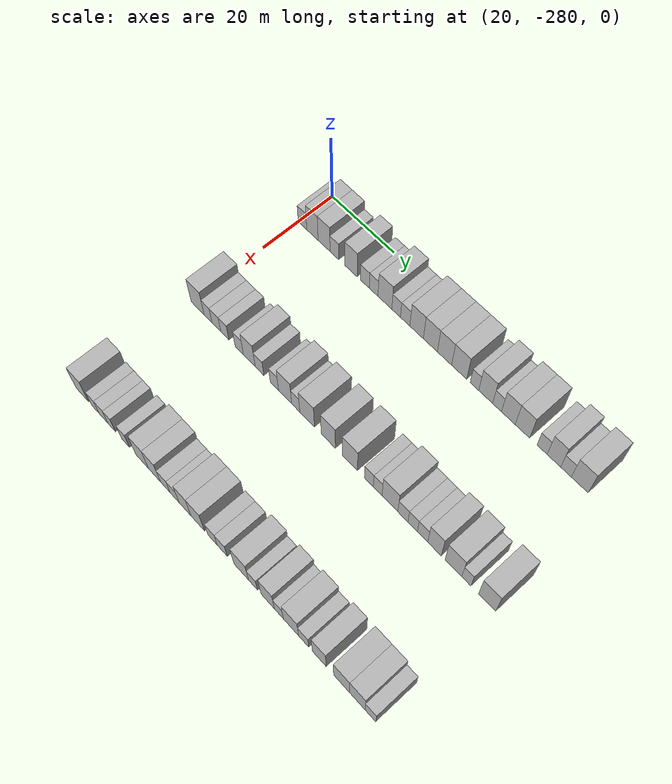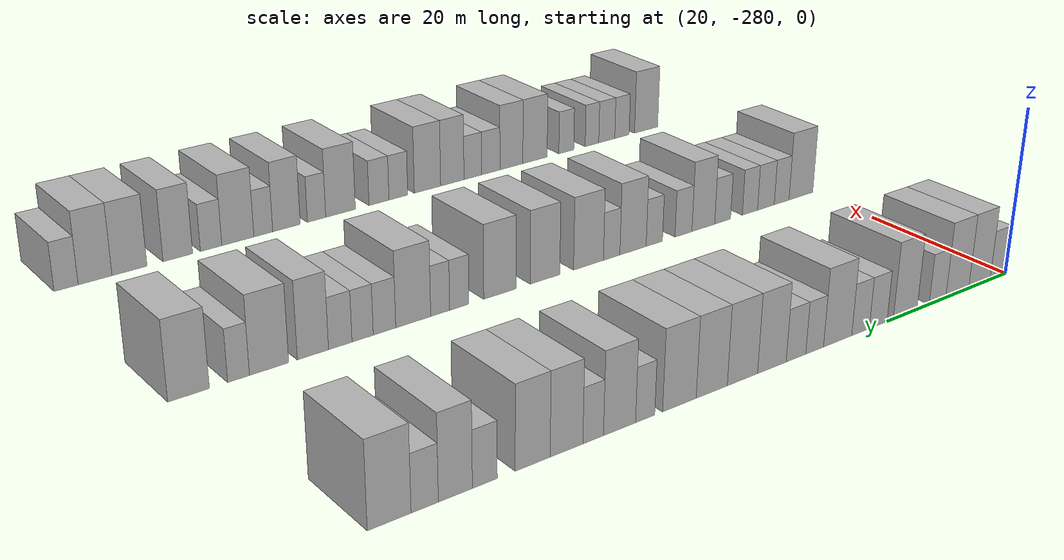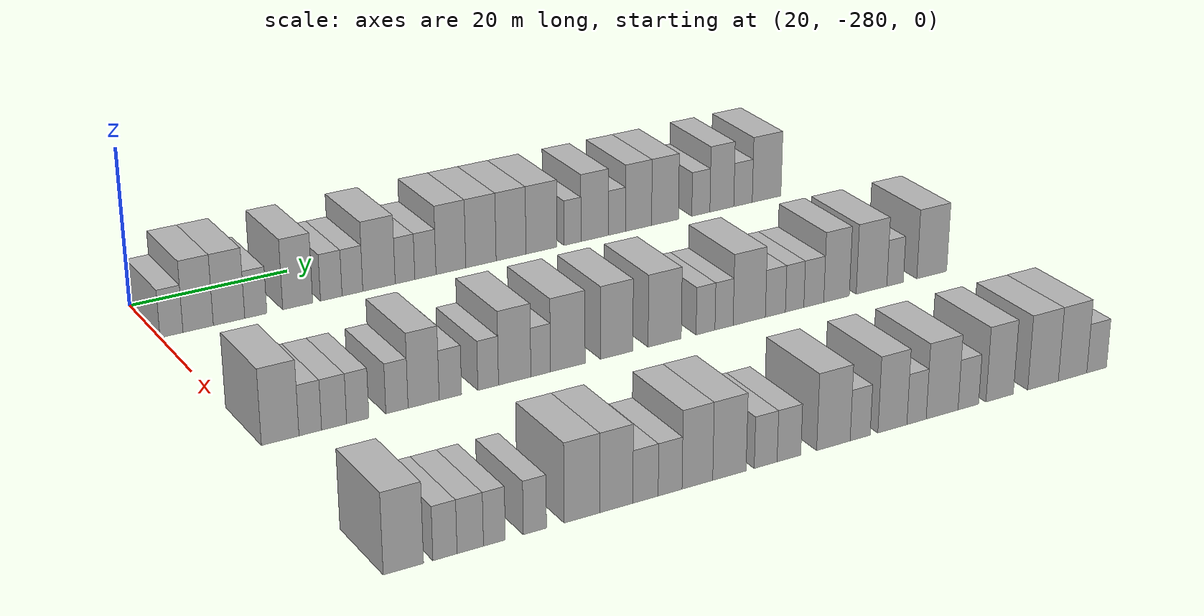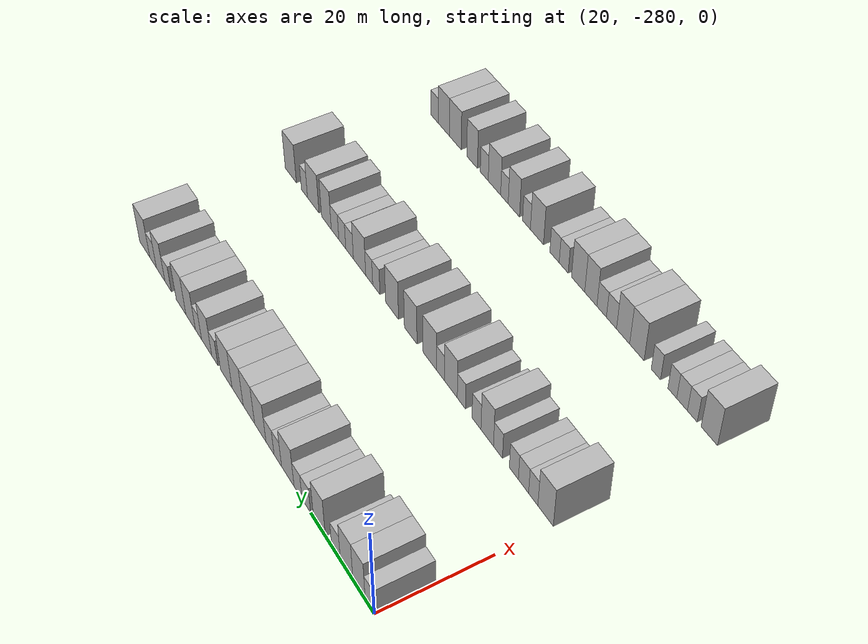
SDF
<sdf version="1.6">
 <world name="default">
  <model name="building_1">
   <static>1</static>
   <pose>25.0000 -278.6009 0 0.000000 0.000000 0.000000</pose>
   <link name="link">
    <pose>0 0 3.00 0 0 0</pose>
    <collision name="collision"><geometry><box><size>10.0000 2.7981 6.0000</size></box></geometry></collision>
    <visual name="visual">
     <cast_shadows>0</cast_shadows>
     <geometry><box><size>10.0000 2.7981 6.0000</size></box></geometry>
     <material>
      <script>
       <uri>model://HANNAS_wall/materials/scripts</uri>
       <uri>model://HANNAS_wall/materials/textures</uri>
       <name>vrc/HANNAS_wall</name>
      </script>
     </material>
    </visual>
   </link>
  </model>
  <model name="building_2">
   <static>1</static>
   <pose>25.0000 -275.3410 0 0.000000 0.000000 0.000000</pose>
   <link name="link">
    <pose>0 0 4.50 0 0 0</pose>
    <collision name="collision"><geometry><box><size>10.0000 3.7218 9.0000</size></box></geometry></collision>
    <visual name="visual">
     <cast_shadows>0</cast_shadows>
     <geometry><box><size>10.0000 3.7218 9.0000</size></box></geometry>
     <material>
      <script>
       <uri>model://HANNAS_wall/materials/scripts</uri>
       <uri>model://HANNAS_wall/materials/textures</uri>
       <name>vrc/HANNAS_wall</name>
      </script>
     </material>
    </visual>
   </link>
  </model>
  <model name="building_3">
   <static>1</static>
   <pose>25.0000 -271.5266 0 0.000000 0.000000 0.000000</pose>
   <link name="link">
    <pose>0 0 4.50 0 0 0</pose>
    <collision name="collision"><geometry><box><size>10.0000 3.9069 9.0000</size></box></geometry></collision>
    <visual name="visual">
     <cast_shadows>0</cast_shadows>
     <geometry><box><size>10.0000 3.9069 9.0000</size></box></geometry>
     <material>
      <script>
       <uri>model://HANNAS_wall/materials/scripts</uri>
       <uri>model://HANNAS_wall/materials/textures</uri>
       <name>vrc/HANNAS_wall</name>
      </script>
     </material>
    </visual>
   </link>
  </model>
  <model name="building_4">
   <static>1</static>
   <pose>25.0000 -268.1847 0 0.000000 0.000000 0.000000</pose>
   <link name="link">
    <pose>0 0 3.00 0 0 0</pose>
    <collision name="collision"><geometry><box><size>10.0000 2.7768 6.0000</size></box></geometry></collision>
    <visual name="visual">
     <cast_shadows>0</cast_shadows>
     <geometry><box><size>10.0000 2.7768 6.0000</size></box></geometry>
     <material>
      <script>
       <uri>model://HANNAS_wall/materials/scripts</uri>
       <uri>model://HANNAS_wall/materials/textures</uri>
       <name>vrc/HANNAS_wall</name>
      </script>
     </material>
    </visual>
   </link>
  </model>
  <model name="building_5">
   <static>1</static>
   <pose>25.0000 -262.8816 0 0.000000 0.000000 0.000000</pose>
   <link name="link">
    <pose>0 0 4.50 0 0 0</pose>
    <collision name="collision"><geometry><box><size>10.0000 3.8293 9.0000</size></box></geometry></collision>
    <visual name="visual">
     <cast_shadows>0</cast_shadows>
     <geometry><box><size>10.0000 3.8293 9.0000</size></box></geometry>
     <material>
      <script>
       <uri>model://HANNAS_wall/materials/scripts</uri>
       <uri>model://HANNAS_wall/materials/textures</uri>
       <name>vrc/HANNAS_wall</name>
      </script>
     </material>
    </visual>
   </link>
  </model>
  <model name="building_6">
   <static>1</static>
   <pose>25.0000 -258.5725 0 0.000000 0.000000 0.000000</pose>
   <link name="link">
    <pose>0 0 3.00 0 0 0</pose>
    <collision name="collision"><geometry><box><size>10.0000 2.7889 6.0000</size></box></geometry></collision>
    <visual name="visual">
     <cast_shadows>0</cast_shadows>
     <geometry><box><size>10.0000 2.7889 6.0000</size></box></geometry>
     <material>
      <script>
       <uri>model://HANNAS_wall/materials/scripts</uri>
       <uri>model://HANNAS_wall/materials/textures</uri>
       <name>vrc/HANNAS_wall</name>
      </script>
     </material>
    </visual>
   </link>
  </model>
  <model name="building_7">
   <static>1</static>
   <pose>25.0000 -255.8251 0 0.000000 0.000000 0.000000</pose>
   <link name="link">
    <pose>0 0 3.00 0 0 0</pose>
    <collision name="collision"><geometry><box><size>10.0000 2.7058 6.0000</size></box></geometry></collision>
    <visual name="visual">
     <cast_shadows>0</cast_shadows>
     <geometry><box><size>10.0000 2.7058 6.0000</size></box></geometry>
     <material>
      <script>
       <uri>model://HANNAS_wall/materials/scripts</uri>
       <uri>model://HANNAS_wall/materials/textures</uri>
       <name>vrc/HANNAS_wall</name>
      </script>
     </material>
    </visual>
   </link>
  </model>
  <model name="building_8">
   <static>1</static>
   <pose>25.0000 -252.3370 0 0.000000 0.000000 0.000000</pose>
   <link name="link">
    <pose>0 0 4.50 0 0 0</pose>
    <collision name="collision"><geometry><box><size>10.0000 4.2704 9.0000</size></box></geometry></collision>
    <visual name="visual">
     <cast_shadows>0</cast_shadows>
     <geometry><box><size>10.0000 4.2704 9.0000</size></box></geometry>
     <material>
      <script>
       <uri>model://HANNAS_wall/materials/scripts</uri>
       <uri>model://HANNAS_wall/materials/textures</uri>
       <name>vrc/HANNAS_wall</name>
      </script>
     </material>
    </visual>
   </link>
  </model>
  <model name="building_9">
   <static>1</static>
   <pose>25.0000 -248.8935 0 0.000000 0.000000 0.000000</pose>
   <link name="link">
    <pose>0 0 3.00 0 0 0</pose>
    <collision name="collision"><geometry><box><size>10.0000 2.6167 6.0000</size></box></geometry></collision>
    <visual name="visual">
     <cast_shadows>0</cast_shadows>
     <geometry><box><size>10.0000 2.6167 6.0000</size></box></geometry>
     <material>
      <script>
       <uri>model://HANNAS_wall/materials/scripts</uri>
       <uri>model://HANNAS_wall/materials/textures</uri>
       <name>vrc/HANNAS_wall</name>
      </script>
     </material>
    </visual>
   </link>
  </model>
  <model name="building_10">
   <static>1</static>
   <pose>25.0000 -246.1637 0 0.000000 0.000000 0.000000</pose>
   <link name="link">
    <pose>0 0 3.00 0 0 0</pose>
    <collision name="collision"><geometry><box><size>10.0000 2.8430 6.0000</size></box></geometry></collision>
    <visual name="visual">
     <cast_shadows>0</cast_shadows>
     <geometry><box><size>10.0000 2.8430 6.0000</size></box></geometry>
     <material>
      <script>
       <uri>model://HANNAS_wall/materials/scripts</uri>
       <uri>model://HANNAS_wall/materials/textures</uri>
       <name>vrc/HANNAS_wall</name>
      </script>
     </material>
    </visual>
   </link>
  </model>
  <model name="building_11">
   <static>1</static>
   <pose>25.0000 -242.7154 0 0.000000 0.000000 0.000000</pose>
   <link name="link">
    <pose>0 0 4.50 0 0 0</pose>
    <collision name="collision"><geometry><box><size>10.0000 4.0534 9.0000</size></box></geometry></collision>
    <visual name="visual">
     <cast_shadows>0</cast_shadows>
     <geometry><box><size>10.0000 4.0534 9.0000</size></box></geometry>
     <material>
      <script>
       <uri>model://HANNAS_wall/materials/scripts</uri>
       <uri>model://HANNAS_wall/materials/textures</uri>
       <name>vrc/HANNAS_wall</name>
      </script>
     </material>
    </visual>
   </link>
  </model>
  <model name="building_12">
   <static>1</static>
   <pose>25.0000 -238.6042 0 0.000000 0.000000 0.000000</pose>
   <link name="link">
    <pose>0 0 4.50 0 0 0</pose>
    <collision name="collision"><geometry><box><size>10.0000 4.1691 9.0000</size></box></geometry></collision>
    <visual name="visual">
     <cast_shadows>0</cast_shadows>
     <geometry><box><size>10.0000 4.1691 9.0000</size></box></geometry>
     <material>
      <script>
       <uri>model://HANNAS_wall/materials/scripts</uri>
       <uri>model://HANNAS_wall/materials/textures</uri>
       <name>vrc/HANNAS_wall</name>
      </script>
     </material>
    </visual>
   </link>
  </model>
  <model name="building_13">
   <static>1</static>
   <pose>25.0000 -234.4380 0 0.000000 0.000000 0.000000</pose>
   <link name="link">
    <pose>0 0 4.50 0 0 0</pose>
    <collision name="collision"><geometry><box><size>10.0000 4.1633 9.0000</size></box></geometry></collision>
    <visual name="visual">
     <cast_shadows>0</cast_shadows>
     <geometry><box><size>10.0000 4.1633 9.0000</size></box></geometry>
     <material>
      <script>
       <uri>model://HANNAS_wall/materials/scripts</uri>
       <uri>model://HANNAS_wall/materials/textures</uri>
       <name>vrc/HANNAS_wall</name>
      </script>
     </material>
    </visual>
   </link>
  </model>
  <model name="building_14">
   <static>1</static>
   <pose>25.0000 -230.1711 0 0.000000 0.000000 0.000000</pose>
   <link name="link">
    <pose>0 0 4.50 0 0 0</pose>
    <collision name="collision"><geometry><box><size>10.0000 4.3705 9.0000</size></box></geometry></collision>
    <visual name="visual">
     <cast_shadows>0</cast_shadows>
     <geometry><box><size>10.0000 4.3705 9.0000</size></box></geometry>
     <material>
      <script>
       <uri>model://HANNAS_wall/materials/scripts</uri>
       <uri>model://HANNAS_wall/materials/textures</uri>
       <name>vrc/HANNAS_wall</name>
      </script>
     </material>
    </visual>
   </link>
  </model>
  <model name="building_15">
   <static>1</static>
   <pose>25.0000 -225.7788 0 0.000000 0.000000 0.000000</pose>
   <link name="link">
    <pose>0 0 3.00 0 0 0</pose>
    <collision name="collision"><geometry><box><size>10.0000 2.4141 6.0000</size></box></geometry></collision>
    <visual name="visual">
     <cast_shadows>0</cast_shadows>
     <geometry><box><size>10.0000 2.4141 6.0000</size></box></geometry>
     <material>
      <script>
       <uri>model://HANNAS_wall/materials/scripts</uri>
       <uri>model://HANNAS_wall/materials/textures</uri>
       <name>vrc/HANNAS_wall</name>
      </script>
     </material>
    </visual>
   </link>
  </model>
  <model name="building_16">
   <static>1</static>
   <pose>25.0000 -222.5971 0 0.000000 0.000000 0.000000</pose>
   <link name="link">
    <pose>0 0 4.50 0 0 0</pose>
    <collision name="collision"><geometry><box><size>10.0000 3.9493 9.0000</size></box></geometry></collision>
    <visual name="visual">
     <cast_shadows>0</cast_shadows>
     <geometry><box><size>10.0000 3.9493 9.0000</size></box></geometry>
     <material>
      <script>
       <uri>model://HANNAS_wall/materials/scripts</uri>
       <uri>model://HANNAS_wall/materials/textures</uri>
       <name>vrc/HANNAS_wall</name>
      </script>
     </material>
    </visual>
   </link>
  </model>
  <model name="building_17">
   <static>1</static>
   <pose>25.0000 -219.3799 0 0.000000 0.000000 0.000000</pose>
   <link name="link">
    <pose>0 0 3.00 0 0 0</pose>
    <collision name="collision"><geometry><box><size>10.0000 2.4851 6.0000</size></box></geometry></collision>
    <visual name="visual">
     <cast_shadows>0</cast_shadows>
     <geometry><box><size>10.0000 2.4851 6.0000</size></box></geometry>
     <material>
      <script>
       <uri>model://HANNAS_wall/materials/scripts</uri>
       <uri>model://HANNAS_wall/materials/textures</uri>
       <name>vrc/HANNAS_wall</name>
      </script>
     </material>
    </visual>
   </link>
  </model>
  <model name="building_18">
   <static>1</static>
   <pose>25.0000 -216.2177 0 0.000000 0.000000 0.000000</pose>
   <link name="link">
    <pose>0 0 4.50 0 0 0</pose>
    <collision name="collision"><geometry><box><size>10.0000 3.8392 9.0000</size></box></geometry></collision>
    <visual name="visual">
     <cast_shadows>0</cast_shadows>
     <geometry><box><size>10.0000 3.8392 9.0000</size></box></geometry>
     <material>
      <script>
       <uri>model://HANNAS_wall/materials/scripts</uri>
       <uri>model://HANNAS_wall/materials/textures</uri>
       <name>vrc/HANNAS_wall</name>
      </script>
     </material>
    </visual>
   </link>
  </model>
  <model name="building_19">
   <static>1</static>
   <pose>25.0000 -212.3028 0 0.000000 0.000000 0.000000</pose>
   <link name="link">
    <pose>0 0 4.50 0 0 0</pose>
    <collision name="collision"><geometry><box><size>10.0000 3.9905 9.0000</size></box></geometry></collision>
    <visual name="visual">
     <cast_shadows>0</cast_shadows>
     <geometry><box><size>10.0000 3.9905 9.0000</size></box></geometry>
     <material>
      <script>
       <uri>model://HANNAS_wall/materials/scripts</uri>
       <uri>model://HANNAS_wall/materials/textures</uri>
       <name>vrc/HANNAS_wall</name>
      </script>
     </material>
    </visual>
   </link>
  </model>
  <model name="building_20">
   <static>1</static>
   <pose>25.0000 -206.9433 0 0.000000 0.000000 0.000000</pose>
   <link name="link">
    <pose>0 0 3.00 0 0 0</pose>
    <collision name="collision"><geometry><box><size>10.0000 2.7284 6.0000</size></box></geometry></collision>
    <visual name="visual">
     <cast_shadows>0</cast_shadows>
     <geometry><box><size>10.0000 2.7284 6.0000</size></box></geometry>
     <material>
      <script>
       <uri>model://HANNAS_wall/materials/scripts</uri>
       <uri>model://HANNAS_wall/materials/textures</uri>
       <name>vrc/HANNAS_wall</name>
      </script>
     </material>
    </visual>
   </link>
  </model>
  <model name="building_21">
   <static>1</static>
   <pose>25.0000 -203.7636 0 0.000000 0.000000 0.000000</pose>
   <link name="link">
    <pose>0 0 4.50 0 0 0</pose>
    <collision name="collision"><geometry><box><size>10.0000 3.6311 9.0000</size></box></geometry></collision>
    <visual name="visual">
     <cast_shadows>0</cast_shadows>
     <geometry><box><size>10.0000 3.6311 9.0000</size></box></geometry>
     <material>
      <script>
       <uri>model://HANNAS_wall/materials/scripts</uri>
       <uri>model://HANNAS_wall/materials/textures</uri>
       <name>vrc/HANNAS_wall</name>
      </script>
     </material>
    </visual>
   </link>
  </model>
  <model name="building_22">
   <static>1</static>
   <pose>25.0000 -200.5274 0 0.000000 0.000000 0.000000</pose>
   <link name="link">
    <pose>0 0 3.00 0 0 0</pose>
    <collision name="collision"><geometry><box><size>10.0000 2.8412 6.0000</size></box></geometry></collision>
    <visual name="visual">
     <cast_shadows>0</cast_shadows>
     <geometry><box><size>10.0000 2.8412 6.0000</size></box></geometry>
     <material>
      <script>
       <uri>model://HANNAS_wall/materials/scripts</uri>
       <uri>model://HANNAS_wall/materials/textures</uri>
       <name>vrc/HANNAS_wall</name>
      </script>
     </material>
    </visual>
   </link>
  </model>
  <model name="building_23">
   <static>1</static>
   <pose>25.0000 -196.8837 0 0.000000 0.000000 0.000000</pose>
   <link name="link">
    <pose>0 0 4.50 0 0 0</pose>
    <collision name="collision"><geometry><box><size>10.0000 4.4463 9.0000</size></box></geometry></collision>
    <visual name="visual">
     <cast_shadows>0</cast_shadows>
     <geometry><box><size>10.0000 4.4463 9.0000</size></box></geometry>
     <material>
      <script>
       <uri>model://HANNAS_wall/materials/scripts</uri>
       <uri>model://HANNAS_wall/materials/textures</uri>
       <name>vrc/HANNAS_wall</name>
      </script>
     </material>
    </visual>
   </link>
  </model>
  <model name="building_140">
   <static>1</static>
   <pose>55.0000 -277.8601 0 0.000000 0.000000 0.000000</pose>
   <link name="link">
    <pose>0 0 4.50 0 0 0</pose>
    <collision name="collision"><geometry><box><size>10.0000 4.2798 9.0000</size></box></geometry></collision>
    <visual name="visual">
     <cast_shadows>0</cast_shadows>
     <geometry><box><size>10.0000 4.2798 9.0000</size></box></geometry>
     <material>
      <script>
       <uri>model://HANNAS_wall/materials/scripts</uri>
       <uri>model://HANNAS_wall/materials/textures</uri>
       <name>vrc/HANNAS_wall</name>
      </script>
     </material>
    </visual>
   </link>
  </model>
  <model name="building_141">
   <static>1</static>
   <pose>55.0000 -274.4155 0 0.000000 0.000000 0.000000</pose>
   <link name="link">
    <pose>0 0 3.00 0 0 0</pose>
    <collision name="collision"><geometry><box><size>10.0000 2.6095 6.0000</size></box></geometry></collision>
    <visual name="visual">
     <cast_shadows>0</cast_shadows>
     <geometry><box><size>10.0000 2.6095 6.0000</size></box></geometry>
     <material>
      <script>
       <uri>model://HANNAS_wall/materials/scripts</uri>
       <uri>model://HANNAS_wall/materials/textures</uri>
       <name>vrc/HANNAS_wall</name>
      </script>
     </material>
    </visual>
   </link>
  </model>
  <model name="building_142">
   <static>1</static>
   <pose>55.0000 -271.6515 0 0.000000 0.000000 0.000000</pose>
   <link name="link">
    <pose>0 0 3.00 0 0 0</pose>
    <collision name="collision"><geometry><box><size>10.0000 2.9184 6.0000</size></box></geometry></collision>
    <visual name="visual">
     <cast_shadows>0</cast_shadows>
     <geometry><box><size>10.0000 2.9184 6.0000</size></box></geometry>
     <material>
      <script>
       <uri>model://HANNAS_wall/materials/scripts</uri>
       <uri>model://HANNAS_wall/materials/textures</uri>
       <name>vrc/HANNAS_wall</name>
      </script>
     </material>
    </visual>
   </link>
  </model>
  <model name="building_143">
   <static>1</static>
   <pose>55.0000 -268.8861 0 0.000000 0.000000 0.000000</pose>
   <link name="link">
    <pose>0 0 3.00 0 0 0</pose>
    <collision name="collision"><geometry><box><size>10.0000 2.6125 6.0000</size></box></geometry></collision>
    <visual name="visual">
     <cast_shadows>0</cast_shadows>
     <geometry><box><size>10.0000 2.6125 6.0000</size></box></geometry>
     <material>
      <script>
       <uri>model://HANNAS_wall/materials/scripts</uri>
       <uri>model://HANNAS_wall/materials/textures</uri>
       <name>vrc/HANNAS_wall</name>
      </script>
     </material>
    </visual>
   </link>
  </model>
  <model name="building_144">
   <static>1</static>
   <pose>55.0000 -264.2519 0 0.000000 0.000000 0.000000</pose>
   <link name="link">
    <pose>0 0 3.00 0 0 0</pose>
    <collision name="collision"><geometry><box><size>10.0000 2.6558 6.0000</size></box></geometry></collision>
    <visual name="visual">
     <cast_shadows>0</cast_shadows>
     <geometry><box><size>10.0000 2.6558 6.0000</size></box></geometry>
     <material>
      <script>
       <uri>model://HANNAS_wall/materials/scripts</uri>
       <uri>model://HANNAS_wall/materials/textures</uri>
       <name>vrc/HANNAS_wall</name>
      </script>
     </material>
    </visual>
   </link>
  </model>
  <model name="building_145">
   <static>1</static>
   <pose>55.0000 -261.0487 0 0.000000 0.000000 0.000000</pose>
   <link name="link">
    <pose>0 0 4.50 0 0 0</pose>
    <collision name="collision"><geometry><box><size>10.0000 3.7507 9.0000</size></box></geometry></collision>
    <visual name="visual">
     <cast_shadows>0</cast_shadows>
     <geometry><box><size>10.0000 3.7507 9.0000</size></box></geometry>
     <material>
      <script>
       <uri>model://HANNAS_wall/materials/scripts</uri>
       <uri>model://HANNAS_wall/materials/textures</uri>
       <name>vrc/HANNAS_wall</name>
      </script>
     </material>
    </visual>
   </link>
  </model>
  <model name="building_146">
   <static>1</static>
   <pose>55.0000 -257.8070 0 0.000000 0.000000 0.000000</pose>
   <link name="link">
    <pose>0 0 3.00 0 0 0</pose>
    <collision name="collision"><geometry><box><size>10.0000 2.7328 6.0000</size></box></geometry></collision>
    <visual name="visual">
     <cast_shadows>0</cast_shadows>
     <geometry><box><size>10.0000 2.7328 6.0000</size></box></geometry>
     <material>
      <script>
       <uri>model://HANNAS_wall/materials/scripts</uri>
       <uri>model://HANNAS_wall/materials/textures</uri>
       <name>vrc/HANNAS_wall</name>
      </script>
     </material>
    </visual>
   </link>
  </model>
  <model name="building_147">
   <static>1</static>
   <pose>55.0000 -253.1611 0 0.000000 0.000000 0.000000</pose>
   <link name="link">
    <pose>0 0 3.00 0 0 0</pose>
    <collision name="collision"><geometry><box><size>10.0000 2.5590 6.0000</size></box></geometry></collision>
    <visual name="visual">
     <cast_shadows>0</cast_shadows>
     <geometry><box><size>10.0000 2.5590 6.0000</size></box></geometry>
     <material>
      <script>
       <uri>model://HANNAS_wall/materials/scripts</uri>
       <uri>model://HANNAS_wall/materials/textures</uri>
       <name>vrc/HANNAS_wall</name>
      </script>
     </material>
    </visual>
   </link>
  </model>
  <model name="building_148">
   <static>1</static>
   <pose>55.0000 -249.8534 0 0.000000 0.000000 0.000000</pose>
   <link name="link">
    <pose>0 0 4.50 0 0 0</pose>
    <collision name="collision"><geometry><box><size>10.0000 4.0565 9.0000</size></box></geometry></collision>
    <visual name="visual">
     <cast_shadows>0</cast_shadows>
     <geometry><box><size>10.0000 4.0565 9.0000</size></box></geometry>
     <material>
      <script>
       <uri>model://HANNAS_wall/materials/scripts</uri>
       <uri>model://HANNAS_wall/materials/textures</uri>
       <name>vrc/HANNAS_wall</name>
      </script>
     </material>
    </visual>
   </link>
  </model>
  <model name="building_149">
   <static>1</static>
   <pose>55.0000 -246.5834 0 0.000000 0.000000 0.000000</pose>
   <link name="link">
    <pose>0 0 3.00 0 0 0</pose>
    <collision name="collision"><geometry><box><size>10.0000 2.4835 6.0000</size></box></geometry></collision>
    <visual name="visual">
     <cast_shadows>0</cast_shadows>
     <geometry><box><size>10.0000 2.4835 6.0000</size></box></geometry>
     <material>
      <script>
       <uri>model://HANNAS_wall/materials/scripts</uri>
       <uri>model://HANNAS_wall/materials/textures</uri>
       <name>vrc/HANNAS_wall</name>
      </script>
     </material>
    </visual>
   </link>
  </model>
  <model name="building_150">
   <static>1</static>
   <pose>55.0000 -243.1252 0 0.000000 0.000000 0.000000</pose>
   <link name="link">
    <pose>0 0 4.50 0 0 0</pose>
    <collision name="collision"><geometry><box><size>10.0000 4.4330 9.0000</size></box></geometry></collision>
    <visual name="visual">
     <cast_shadows>0</cast_shadows>
     <geometry><box><size>10.0000 4.4330 9.0000</size></box></geometry>
     <material>
      <script>
       <uri>model://HANNAS_wall/materials/scripts</uri>
       <uri>model://HANNAS_wall/materials/textures</uri>
       <name>vrc/HANNAS_wall</name>
      </script>
     </material>
    </visual>
   </link>
  </model>
  <model name="building_151">
   <static>1</static>
   <pose>55.0000 -236.7962 0 0.000000 0.000000 0.000000</pose>
   <link name="link">
    <pose>0 0 4.50 0 0 0</pose>
    <collision name="collision"><geometry><box><size>10.0000 4.2250 9.0000</size></box></geometry></collision>
    <visual name="visual">
     <cast_shadows>0</cast_shadows>
     <geometry><box><size>10.0000 4.2250 9.0000</size></box></geometry>
     <material>
      <script>
       <uri>model://HANNAS_wall/materials/scripts</uri>
       <uri>model://HANNAS_wall/materials/textures</uri>
       <name>vrc/HANNAS_wall</name>
      </script>
     </material>
    </visual>
   </link>
  </model>
  <model name="building_152">
   <static>1</static>
   <pose>55.0000 -230.4719 0 0.000000 0.000000 0.000000</pose>
   <link name="link">
    <pose>0 0 4.50 0 0 0</pose>
    <collision name="collision"><geometry><box><size>10.0000 4.4236 9.0000</size></box></geometry></collision>
    <visual name="visual">
     <cast_shadows>0</cast_shadows>
     <geometry><box><size>10.0000 4.4236 9.0000</size></box></geometry>
     <material>
      <script>
       <uri>model://HANNAS_wall/materials/scripts</uri>
       <uri>model://HANNAS_wall/materials/textures</uri>
       <name>vrc/HANNAS_wall</name>
      </script>
     </material>
    </visual>
   </link>
  </model>
  <model name="building_153">
   <static>1</static>
   <pose>55.0000 -224.9802 0 0.000000 0.000000 0.000000</pose>
   <link name="link">
    <pose>0 0 3.00 0 0 0</pose>
    <collision name="collision"><geometry><box><size>10.0000 2.5598 6.0000</size></box></geometry></collision>
    <visual name="visual">
     <cast_shadows>0</cast_shadows>
     <geometry><box><size>10.0000 2.5598 6.0000</size></box></geometry>
     <material>
      <script>
       <uri>model://HANNAS_wall/materials/scripts</uri>
       <uri>model://HANNAS_wall/materials/textures</uri>
       <name>vrc/HANNAS_wall</name>
      </script>
     </material>
    </visual>
   </link>
  </model>
  <model name="building_154">
   <static>1</static>
   <pose>55.0000 -222.4591 0 0.000000 0.000000 0.000000</pose>
   <link name="link">
    <pose>0 0 3.00 0 0 0</pose>
    <collision name="collision"><geometry><box><size>10.0000 2.4824 6.0000</size></box></geometry></collision>
    <visual name="visual">
     <cast_shadows>0</cast_shadows>
     <geometry><box><size>10.0000 2.4824 6.0000</size></box></geometry>
     <material>
      <script>
       <uri>model://HANNAS_wall/materials/scripts</uri>
       <uri>model://HANNAS_wall/materials/textures</uri>
       <name>vrc/HANNAS_wall</name>
      </script>
     </material>
    </visual>
   </link>
  </model>
  <model name="building_155">
   <static>1</static>
   <pose>55.0000 -218.9857 0 0.000000 0.000000 0.000000</pose>
   <link name="link">
    <pose>0 0 4.50 0 0 0</pose>
    <collision name="collision"><geometry><box><size>10.0000 4.4643 9.0000</size></box></geometry></collision>
    <visual name="visual">
     <cast_shadows>0</cast_shadows>
     <geometry><box><size>10.0000 4.4643 9.0000</size></box></geometry>
     <material>
      <script>
       <uri>model://HANNAS_wall/materials/scripts</uri>
       <uri>model://HANNAS_wall/materials/textures</uri>
       <name>vrc/HANNAS_wall</name>
      </script>
     </material>
    </visual>
   </link>
  </model>
  <model name="building_156">
   <static>1</static>
   <pose>55.0000 -215.3492 0 0.000000 0.000000 0.000000</pose>
   <link name="link">
    <pose>0 0 3.00 0 0 0</pose>
    <collision name="collision"><geometry><box><size>10.0000 2.8088 6.0000</size></box></geometry></collision>
    <visual name="visual">
     <cast_shadows>0</cast_shadows>
     <geometry><box><size>10.0000 2.8088 6.0000</size></box></geometry>
     <material>
      <script>
       <uri>model://HANNAS_wall/materials/scripts</uri>
       <uri>model://HANNAS_wall/materials/textures</uri>
       <name>vrc/HANNAS_wall</name>
      </script>
     </material>
    </visual>
   </link>
  </model>
  <model name="building_157">
   <static>1</static>
   <pose>55.0000 -212.6414 0 0.000000 0.000000 0.000000</pose>
   <link name="link">
    <pose>0 0 3.00 0 0 0</pose>
    <collision name="collision"><geometry><box><size>10.0000 2.6068 6.0000</size></box></geometry></collision>
    <visual name="visual">
     <cast_shadows>0</cast_shadows>
     <geometry><box><size>10.0000 2.6068 6.0000</size></box></geometry>
     <material>
      <script>
       <uri>model://HANNAS_wall/materials/scripts</uri>
       <uri>model://HANNAS_wall/materials/textures</uri>
       <name>vrc/HANNAS_wall</name>
      </script>
     </material>
    </visual>
   </link>
  </model>
  <model name="building_158">
   <static>1</static>
   <pose>55.0000 -209.9213 0 0.000000 0.000000 0.000000</pose>
   <link name="link">
    <pose>0 0 3.00 0 0 0</pose>
    <collision name="collision"><geometry><box><size>10.0000 2.8333 6.0000</size></box></geometry></collision>
    <visual name="visual">
     <cast_shadows>0</cast_shadows>
     <geometry><box><size>10.0000 2.8333 6.0000</size></box></geometry>
     <material>
      <script>
       <uri>model://HANNAS_wall/materials/scripts</uri>
       <uri>model://HANNAS_wall/materials/textures</uri>
       <name>vrc/HANNAS_wall</name>
      </script>
     </material>
    </visual>
   </link>
  </model>
  <model name="building_159">
   <static>1</static>
   <pose>55.0000 -206.6636 0 0.000000 0.000000 0.000000</pose>
   <link name="link">
    <pose>0 0 4.50 0 0 0</pose>
    <collision name="collision"><geometry><box><size>10.0000 3.6821 9.0000</size></box></geometry></collision>
    <visual name="visual">
     <cast_shadows>0</cast_shadows>
     <geometry><box><size>10.0000 3.6821 9.0000</size></box></geometry>
     <material>
      <script>
       <uri>model://HANNAS_wall/materials/scripts</uri>
       <uri>model://HANNAS_wall/materials/textures</uri>
       <name>vrc/HANNAS_wall</name>
      </script>
     </material>
    </visual>
   </link>
  </model>
  <model name="building_160">
   <static>1</static>
   <pose>55.0000 -201.5835 0 0.000000 0.000000 0.000000</pose>
   <link name="link">
    <pose>0 0 4.50 0 0 0</pose>
    <collision name="collision"><geometry><box><size>10.0000 4.4781 9.0000</size></box></geometry></collision>
    <visual name="visual">
     <cast_shadows>0</cast_shadows>
     <geometry><box><size>10.0000 4.4781 9.0000</size></box></geometry>
     <material>
      <script>
       <uri>model://HANNAS_wall/materials/scripts</uri>
       <uri>model://HANNAS_wall/materials/textures</uri>
       <name>vrc/HANNAS_wall</name>
      </script>
     </material>
    </visual>
   </link>
  </model>
  <model name="building_161">
   <static>1</static>
   <pose>55.0000 -198.1288 0 0.000000 0.000000 0.000000</pose>
   <link name="link">
    <pose>0 0 3.00 0 0 0</pose>
    <collision name="collision"><geometry><box><size>10.0000 2.4314 6.0000</size></box></geometry></collision>
    <visual name="visual">
     <cast_shadows>0</cast_shadows>
     <geometry><box><size>10.0000 2.4314 6.0000</size></box></geometry>
     <material>
      <script>
       <uri>model://HANNAS_wall/materials/scripts</uri>
       <uri>model://HANNAS_wall/materials/textures</uri>
       <name>vrc/HANNAS_wall</name>
      </script>
     </material>
    </visual>
   </link>
  </model>
  <model name="building_162">
   <static>1</static>
   <pose>55.0000 -192.6689 0 0.000000 0.000000 0.000000</pose>
   <link name="link">
    <pose>0 0 4.50 0 0 0</pose>
    <collision name="collision"><geometry><box><size>10.0000 4.4884 9.0000</size></box></geometry></collision>
    <visual name="visual">
     <cast_shadows>0</cast_shadows>
     <geometry><box><size>10.0000 4.4884 9.0000</size></box></geometry>
     <material>
      <script>
       <uri>model://HANNAS_wall/materials/scripts</uri>
       <uri>model://HANNAS_wall/materials/textures</uri>
       <name>vrc/HANNAS_wall</name>
      </script>
     </material>
    </visual>
   </link>
  </model>
  <model name="building_269">
   <static>1</static>
   <pose>85.0000 -277.8572 0 0.000000 0.000000 0.000000</pose>
   <link name="link">
    <pose>0 0 4.50 0 0 0</pose>
    <collision name="collision"><geometry><box><size>10.0000 4.2855 9.0000</size></box></geometry></collision>
    <visual name="visual">
     <cast_shadows>0</cast_shadows>
     <geometry><box><size>10.0000 4.2855 9.0000</size></box></geometry>
     <material>
      <script>
       <uri>model://HANNAS_wall/materials/scripts</uri>
       <uri>model://HANNAS_wall/materials/textures</uri>
       <name>vrc/HANNAS_wall</name>
      </script>
     </material>
    </visual>
   </link>
  </model>
  <model name="building_270">
   <static>1</static>
   <pose>85.0000 -273.4101 0 0.000000 0.000000 0.000000</pose>
   <link name="link">
    <pose>0 0 3.00 0 0 0</pose>
    <collision name="collision"><geometry><box><size>10.0000 2.6087 6.0000</size></box></geometry></collision>
    <visual name="visual">
     <cast_shadows>0</cast_shadows>
     <geometry><box><size>10.0000 2.6087 6.0000</size></box></geometry>
     <material>
      <script>
       <uri>model://HANNAS_wall/materials/scripts</uri>
       <uri>model://HANNAS_wall/materials/textures</uri>
       <name>vrc/HANNAS_wall</name>
      </script>
     </material>
    </visual>
   </link>
  </model>
  <model name="building_271">
   <static>1</static>
   <pose>85.0000 -270.6656 0 0.000000 0.000000 0.000000</pose>
   <link name="link">
    <pose>0 0 3.00 0 0 0</pose>
    <collision name="collision"><geometry><box><size>10.0000 2.8805 6.0000</size></box></geometry></collision>
    <visual name="visual">
     <cast_shadows>0</cast_shadows>
     <geometry><box><size>10.0000 2.8805 6.0000</size></box></geometry>
     <material>
      <script>
       <uri>model://HANNAS_wall/materials/scripts</uri>
       <uri>model://HANNAS_wall/materials/textures</uri>
       <name>vrc/HANNAS_wall</name>
      </script>
     </material>
    </visual>
   </link>
  </model>
  <model name="building_272">
   <static>1</static>
   <pose>85.0000 -268.0228 0 0.000000 0.000000 0.000000</pose>
   <link name="link">
    <pose>0 0 3.00 0 0 0</pose>
    <collision name="collision"><geometry><box><size>10.0000 2.4050 6.0000</size></box></geometry></collision>
    <visual name="visual">
     <cast_shadows>0</cast_shadows>
     <geometry><box><size>10.0000 2.4050 6.0000</size></box></geometry>
     <material>
      <script>
       <uri>model://HANNAS_wall/materials/scripts</uri>
       <uri>model://HANNAS_wall/materials/textures</uri>
       <name>vrc/HANNAS_wall</name>
      </script>
     </material>
    </visual>
   </link>
  </model>
  <model name="building_273">
   <static>1</static>
   <pose>85.0000 -263.5255 0 0.000000 0.000000 0.000000</pose>
   <link name="link">
    <pose>0 0 3.00 0 0 0</pose>
    <collision name="collision"><geometry><box><size>10.0000 2.5896 6.0000</size></box></geometry></collision>
    <visual name="visual">
     <cast_shadows>0</cast_shadows>
     <geometry><box><size>10.0000 2.5896 6.0000</size></box></geometry>
     <material>
      <script>
       <uri>model://HANNAS_wall/materials/scripts</uri>
       <uri>model://HANNAS_wall/materials/textures</uri>
       <name>vrc/HANNAS_wall</name>
      </script>
     </material>
    </visual>
   </link>
  </model>
  <model name="building_274">
   <static>1</static>
   <pose>85.0000 -258.1785 0 0.000000 0.000000 0.000000</pose>
   <link name="link">
    <pose>0 0 4.50 0 0 0</pose>
    <collision name="collision"><geometry><box><size>10.0000 4.1045 9.0000</size></box></geometry></collision>
    <visual name="visual">
     <cast_shadows>0</cast_shadows>
     <geometry><box><size>10.0000 4.1045 9.0000</size></box></geometry>
     <material>
      <script>
       <uri>model://HANNAS_wall/materials/scripts</uri>
       <uri>model://HANNAS_wall/materials/textures</uri>
       <name>vrc/HANNAS_wall</name>
      </script>
     </material>
    </visual>
   </link>
  </model>
  <model name="building_275">
   <static>1</static>
   <pose>85.0000 -254.2249 0 0.000000 0.000000 0.000000</pose>
   <link name="link">
    <pose>0 0 4.50 0 0 0</pose>
    <collision name="collision"><geometry><box><size>10.0000 3.8027 9.0000</size></box></geometry></collision>
    <visual name="visual">
     <cast_shadows>0</cast_shadows>
     <geometry><box><size>10.0000 3.8027 9.0000</size></box></geometry>
     <material>
      <script>
       <uri>model://HANNAS_wall/materials/scripts</uri>
       <uri>model://HANNAS_wall/materials/textures</uri>
       <name>vrc/HANNAS_wall</name>
      </script>
     </material>
    </visual>
   </link>
  </model>
  <model name="building_276">
   <static>1</static>
   <pose>85.0000 -250.8427 0 0.000000 0.000000 0.000000</pose>
   <link name="link">
    <pose>0 0 3.00 0 0 0</pose>
    <collision name="collision"><geometry><box><size>10.0000 2.9617 6.0000</size></box></geometry></collision>
    <visual name="visual">
     <cast_shadows>0</cast_shadows>
     <geometry><box><size>10.0000 2.9617 6.0000</size></box></geometry>
     <material>
      <script>
       <uri>model://HANNAS_wall/materials/scripts</uri>
       <uri>model://HANNAS_wall/materials/textures</uri>
       <name>vrc/HANNAS_wall</name>
      </script>
     </material>
    </visual>
   </link>
  </model>
  <model name="building_277">
   <static>1</static>
   <pose>85.0000 -247.9474 0 0.000000 0.000000 0.000000</pose>
   <link name="link">
    <pose>0 0 3.00 0 0 0</pose>
    <collision name="collision"><geometry><box><size>10.0000 2.8289 6.0000</size></box></geometry></collision>
    <visual name="visual">
     <cast_shadows>0</cast_shadows>
     <geometry><box><size>10.0000 2.8289 6.0000</size></box></geometry>
     <material>
      <script>
       <uri>model://HANNAS_wall/materials/scripts</uri>
       <uri>model://HANNAS_wall/materials/textures</uri>
       <name>vrc/HANNAS_wall</name>
      </script>
     </material>
    </visual>
   </link>
  </model>
  <model name="building_278">
   <static>1</static>
   <pose>85.0000 -244.6923 0 0.000000 0.000000 0.000000</pose>
   <link name="link">
    <pose>0 0 4.50 0 0 0</pose>
    <collision name="collision"><geometry><box><size>10.0000 3.6812 9.0000</size></box></geometry></collision>
    <visual name="visual">
     <cast_shadows>0</cast_shadows>
     <geometry><box><size>10.0000 3.6812 9.0000</size></box></geometry>
     <material>
      <script>
       <uri>model://HANNAS_wall/materials/scripts</uri>
       <uri>model://HANNAS_wall/materials/textures</uri>
       <name>vrc/HANNAS_wall</name>
      </script>
     </material>
    </visual>
   </link>
  </model>
  <model name="building_279">
   <static>1</static>
   <pose>85.0000 -240.8204 0 0.000000 0.000000 0.000000</pose>
   <link name="link">
    <pose>0 0 4.50 0 0 0</pose>
    <collision name="collision"><geometry><box><size>10.0000 4.0627 9.0000</size></box></geometry></collision>
    <visual name="visual">
     <cast_shadows>0</cast_shadows>
     <geometry><box><size>10.0000 4.0627 9.0000</size></box></geometry>
     <material>
      <script>
       <uri>model://HANNAS_wall/materials/scripts</uri>
       <uri>model://HANNAS_wall/materials/textures</uri>
       <name>vrc/HANNAS_wall</name>
      </script>
     </material>
    </visual>
   </link>
  </model>
  <model name="building_280">
   <static>1</static>
   <pose>85.0000 -236.3772 0 0.000000 0.000000 0.000000</pose>
   <link name="link">
    <pose>0 0 3.00 0 0 0</pose>
    <collision name="collision"><geometry><box><size>10.0000 2.8237 6.0000</size></box></geometry></collision>
    <visual name="visual">
     <cast_shadows>0</cast_shadows>
     <geometry><box><size>10.0000 2.8237 6.0000</size></box></geometry>
     <material>
      <script>
       <uri>model://HANNAS_wall/materials/scripts</uri>
       <uri>model://HANNAS_wall/materials/textures</uri>
       <name>vrc/HANNAS_wall</name>
      </script>
     </material>
    </visual>
   </link>
  </model>
  <model name="building_281">
   <static>1</static>
   <pose>85.0000 -233.4839 0 0.000000 0.000000 0.000000</pose>
   <link name="link">
    <pose>0 0 3.00 0 0 0</pose>
    <collision name="collision"><geometry><box><size>10.0000 2.9631 6.0000</size></box></geometry></collision>
    <visual name="visual">
     <cast_shadows>0</cast_shadows>
     <geometry><box><size>10.0000 2.9631 6.0000</size></box></geometry>
     <material>
      <script>
       <uri>model://HANNAS_wall/materials/scripts</uri>
       <uri>model://HANNAS_wall/materials/textures</uri>
       <name>vrc/HANNAS_wall</name>
      </script>
     </material>
    </visual>
   </link>
  </model>
  <model name="building_282">
   <static>1</static>
   <pose>85.0000 -227.8707 0 0.000000 0.000000 0.000000</pose>
   <link name="link">
    <pose>0 0 4.50 0 0 0</pose>
    <collision name="collision"><geometry><box><size>10.0000 4.2632 9.0000</size></box></geometry></collision>
    <visual name="visual">
     <cast_shadows>0</cast_shadows>
     <geometry><box><size>10.0000 4.2632 9.0000</size></box></geometry>
     <material>
      <script>
       <uri>model://HANNAS_wall/materials/scripts</uri>
       <uri>model://HANNAS_wall/materials/textures</uri>
       <name>vrc/HANNAS_wall</name>
      </script>
     </material>
    </visual>
   </link>
  </model>
  <model name="building_283">
   <static>1</static>
   <pose>85.0000 -224.4472 0 0.000000 0.000000 0.000000</pose>
   <link name="link">
    <pose>0 0 3.00 0 0 0</pose>
    <collision name="collision"><geometry><box><size>10.0000 2.5839 6.0000</size></box></geometry></collision>
    <visual name="visual">
     <cast_shadows>0</cast_shadows>
     <geometry><box><size>10.0000 2.5839 6.0000</size></box></geometry>
     <material>
      <script>
       <uri>model://HANNAS_wall/materials/scripts</uri>
       <uri>model://HANNAS_wall/materials/textures</uri>
       <name>vrc/HANNAS_wall</name>
      </script>
     </material>
    </visual>
   </link>
  </model>
  <model name="building_284">
   <static>1</static>
   <pose>85.0000 -220.2574 0 0.000000 0.000000 0.000000</pose>
   <link name="link">
    <pose>0 0 4.50 0 0 0</pose>
    <collision name="collision"><geometry><box><size>10.0000 3.7957 9.0000</size></box></geometry></collision>
    <visual name="visual">
     <cast_shadows>0</cast_shadows>
     <geometry><box><size>10.0000 3.7957 9.0000</size></box></geometry>
     <material>
      <script>
       <uri>model://HANNAS_wall/materials/scripts</uri>
       <uri>model://HANNAS_wall/materials/textures</uri>
       <name>vrc/HANNAS_wall</name>
      </script>
     </material>
    </visual>
   </link>
  </model>
  <model name="building_285">
   <static>1</static>
   <pose>85.0000 -217.0835 0 0.000000 0.000000 0.000000</pose>
   <link name="link">
    <pose>0 0 3.00 0 0 0</pose>
    <collision name="collision"><geometry><box><size>10.0000 2.5522 6.0000</size></box></geometry></collision>
    <visual name="visual">
     <cast_shadows>0</cast_shadows>
     <geometry><box><size>10.0000 2.5522 6.0000</size></box></geometry>
     <material>
      <script>
       <uri>model://HANNAS_wall/materials/scripts</uri>
       <uri>model://HANNAS_wall/materials/textures</uri>
       <name>vrc/HANNAS_wall</name>
      </script>
     </material>
    </visual>
   </link>
  </model>
  <model name="building_286">
   <static>1</static>
   <pose>85.0000 -213.6773 0 0.000000 0.000000 0.000000</pose>
   <link name="link">
    <pose>0 0 4.50 0 0 0</pose>
    <collision name="collision"><geometry><box><size>10.0000 4.2602 9.0000</size></box></geometry></collision>
    <visual name="visual">
     <cast_shadows>0</cast_shadows>
     <geometry><box><size>10.0000 4.2602 9.0000</size></box></geometry>
     <material>
      <script>
       <uri>model://HANNAS_wall/materials/scripts</uri>
       <uri>model://HANNAS_wall/materials/textures</uri>
       <name>vrc/HANNAS_wall</name>
      </script>
     </material>
    </visual>
   </link>
  </model>
  <model name="building_287">
   <static>1</static>
   <pose>85.0000 -210.1547 0 0.000000 0.000000 0.000000</pose>
   <link name="link">
    <pose>0 0 3.00 0 0 0</pose>
    <collision name="collision"><geometry><box><size>10.0000 2.7849 6.0000</size></box></geometry></collision>
    <visual name="visual">
     <cast_shadows>0</cast_shadows>
     <geometry><box><size>10.0000 2.7849 6.0000</size></box></geometry>
     <material>
      <script>
       <uri>model://HANNAS_wall/materials/scripts</uri>
       <uri>model://HANNAS_wall/materials/textures</uri>
       <name>vrc/HANNAS_wall</name>
      </script>
     </material>
    </visual>
   </link>
  </model>
  <model name="building_288">
   <static>1</static>
   <pose>85.0000 -205.8811 0 0.000000 0.000000 0.000000</pose>
   <link name="link">
    <pose>0 0 4.50 0 0 0</pose>
    <collision name="collision"><geometry><box><size>10.0000 3.7625 9.0000</size></box></geometry></collision>
    <visual name="visual">
     <cast_shadows>0</cast_shadows>
     <geometry><box><size>10.0000 3.7625 9.0000</size></box></geometry>
     <material>
      <script>
       <uri>model://HANNAS_wall/materials/scripts</uri>
       <uri>model://HANNAS_wall/materials/textures</uri>
       <name>vrc/HANNAS_wall</name>
      </script>
     </material>
    </visual>
   </link>
  </model>
  <model name="building_289">
   <static>1</static>
   <pose>85.0000 -199.8570 0 0.000000 0.000000 0.000000</pose>
   <link name="link">
    <pose>0 0 4.50 0 0 0</pose>
    <collision name="collision"><geometry><box><size>10.0000 4.2858 9.0000</size></box></geometry></collision>
    <visual name="visual">
     <cast_shadows>0</cast_shadows>
     <geometry><box><size>10.0000 4.2858 9.0000</size></box></geometry>
     <material>
      <script>
       <uri>model://HANNAS_wall/materials/scripts</uri>
       <uri>model://HANNAS_wall/materials/textures</uri>
       <name>vrc/HANNAS_wall</name>
      </script>
     </material>
    </visual>
   </link>
  </model>
  <model name="building_290">
   <static>1</static>
   <pose>85.0000 -195.6907 0 0.000000 0.000000 0.000000</pose>
   <link name="link">
    <pose>0 0 4.50 0 0 0</pose>
    <collision name="collision"><geometry><box><size>10.0000 4.0467 9.0000</size></box></geometry></collision>
    <visual name="visual">
     <cast_shadows>0</cast_shadows>
     <geometry><box><size>10.0000 4.0467 9.0000</size></box></geometry>
     <material>
      <script>
       <uri>model://HANNAS_wall/materials/scripts</uri>
       <uri>model://HANNAS_wall/materials/textures</uri>
       <name>vrc/HANNAS_wall</name>
      </script>
     </material>
    </visual>
   </link>
  </model>
  <model name="building_291">
   <static>1</static>
   <pose>85.0000 -192.2555 0 0.000000 0.000000 0.000000</pose>
   <link name="link">
    <pose>0 0 3.00 0 0 0</pose>
    <collision name="collision"><geometry><box><size>10.0000 2.8239 6.0000</size></box></geometry></collision>
    <visual name="visual">
     <cast_shadows>0</cast_shadows>
     <geometry><box><size>10.0000 2.8239 6.0000</size></box></geometry>
     <material>
      <script>
       <uri>model://HANNAS_wall/materials/scripts</uri>
       <uri>model://HANNAS_wall/materials/textures</uri>
       <name>vrc/HANNAS_wall</name>
      </script>
     </material>
    </visual>
   </link>
  </model>
 </world>
</sdf>
